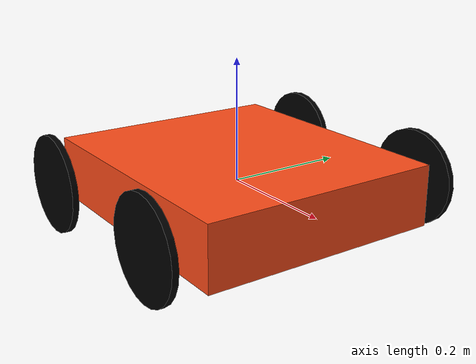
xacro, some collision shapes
<?xml version="1.0"?>

<robot name='robot' xmlns:xacro="http://ros.org/wiki/xacro">

  <xacro:property name="wheel_offset_x" value="0.0"/>
  <xacro:property name="wheel_offset_y" value="0.0"/>
  <xacro:property name="wheel_offset_z" value="0.0"/>

  <xacro:property name="wheel_mass" value="0.1"/>
  <xacro:property name="wheel_radius" value="0.08"/>
  <xacro:property name="wheel_width" value="0.01"/>

  <xacro:property name="body_height" value="0.1"/>
  <xacro:property name="body_width" value="0.45"/>
  <xacro:property name="body_length" value="0.4"/>
  <xacro:property name="mass" value="5.0"/>

  <xacro:property name="wheeltrack" value="0.5"/>
  <xacro:property name="wheelbase" value="0.3"/>

  <xacro:property name="chassis_offset_z" value="0.0"/>
  <xacro:property name="chassis_offset_y" value="0.0"/>
  <xacro:property name="chassis_offset_x" value="0.0"/>

  <xacro:include filename="$(find robot_description)/urdf/gazebo.urdf.xacro" />

  <material name="white">
      <color rgba="1 1 1 1" />
  </material>

  <material name="orange">
      <color rgba="1 0.3 0.1 1"/>
  </material>

  <material name="blue">
      <color rgba="0.2 0.2 1 1"/>
  </material>

  <material name="black">
      <color rgba="0 0 0 1"/>
  </material>

  <material name="red">
      <color rgba="1 0 0 1"/>
  </material>

  <link name="base_link">
  </link>

  <link name="base_footprint">
  </link>

  <joint name="base_footprint_joint" type="fixed">
    <parent link="base_link"/>
    <child link="base_footprint"/>
    <origin rpy="0 0 0" xyz="0 0 0"/>
  </joint>

  <joint name="body_joint" type="fixed">
    <parent link="base_link"/>
    <child link="body_link"/>
    <origin xyz="${-wheel_offset_x} ${-wheel_offset_y} ${-wheel_offset_z}" rpy ="0 0 ${pi/2}"/>
  </joint>

  <link name="body_link">
    <visual>
        <geometry>
          <mesh filename="file://$(find robot_description)/urdf/shorty_pizza.stl" scale="0.005 0.005 0.005"/>
        </geometry>
      <material name="orange"/>
    </visual>
    <collision>
      <geometry>
        <box size="${body_length} ${body_width} ${body_height}"/>
      </geometry>
    </collision>
    <inertial>
      <origin xyz="0 0 0" rpy="0 0 0"/>
      <mass value="${mass}" />
      <inertia ixx="${(1/12) * mass * (body_width*body_width+body_height*body_height)}" ixy="0.0" ixz="0.0"
               iyy="${(1/12) * mass * (body_length*body_length+body_height*body_height)}" iyz="0.0"
               izz="${(1/12) * mass * (body_length*body_length+body_width*body_width)}"/>
    </inertial>
  </link>

  <gazebo reference="body_link">
    <material>Gazebo/Orange</material>
  </gazebo>

  <xacro:macro name="wheel" params="prefix">
    <link name="${prefix}_wheel_link">
      <visual>
        <geometry>
          <cylinder length="${wheel_width}" radius="${wheel_radius}"/>
        </geometry>
        <material name="black"/>
        <origin rpy="${pi/2} 0 0" xyz="0 0 0"/>
      </visual>
      <collision>
        <geometry>
          <cylinder length="${wheel_width}" radius="${wheel_radius}"/>
        </geometry>
        <origin rpy="${pi/2} 0 0" xyz="0 0 0"/>
      </collision>
      <inertial>
        <origin xyz="0 0 0" rpy="0 0 0"/>
        <mass value="${wheel_mass}" />
        <inertia ixx="${(1/12) * wheel_mass * (3*wheel_radius*wheel_radius + wheel_width*wheel_width)}" ixy="0.0" ixz="0.0"
                 iyy="${(1/12) * wheel_mass * (3*wheel_radius*wheel_radius + wheel_width*wheel_width)}" iyz="0.0"
                 izz="${(1/12) * wheel_mass * (wheel_radius*wheel_radius)}"/>
      </inertial>
    </link>
    <gazebo reference="${prefix}_wheel_link">
      <material>Gazebo/Black</material>
    </gazebo>
  </xacro:macro>

  <xacro:wheel prefix="front_left"/>
  <xacro:wheel prefix="front_right"/>
  <xacro:wheel prefix="rear_left"/>
  <xacro:wheel prefix="rear_right"/>

  <xacro:macro name="wheel_joint" params="prefix origin_xyz">
    <joint name="${prefix}_wheel_joint" type="continuous">
      <origin xyz="${origin_xyz}"/>
      <parent link="base_link"/>
      <child link="${prefix}_wheel_link"/>
      <axis xyz="0 1 0"/>
    </joint>
  </xacro:macro>

  <xacro:wheel_joint prefix="front_left" origin_xyz="${wheelbase / 2 + chassis_offset_x} ${wheeltrack / 2 + chassis_offset_y} ${chassis_offset_z}"/>
  <xacro:wheel_joint prefix="front_right" origin_xyz="${wheelbase / 2 + chassis_offset_x} ${-wheeltrack / 2 + chassis_offset_y} ${chassis_offset_z}"/>
  <xacro:wheel_joint prefix="rear_left" origin_xyz="${-wheelbase / 2 + chassis_offset_x} ${wheeltrack / 2 + chassis_offset_y} ${chassis_offset_z}"/>
  <xacro:wheel_joint prefix="rear_right" origin_xyz="${-wheelbase / 2 + chassis_offset_x} ${-wheeltrack / 2 + chassis_offset_y} ${chassis_offset_z}"/>

</robot>
